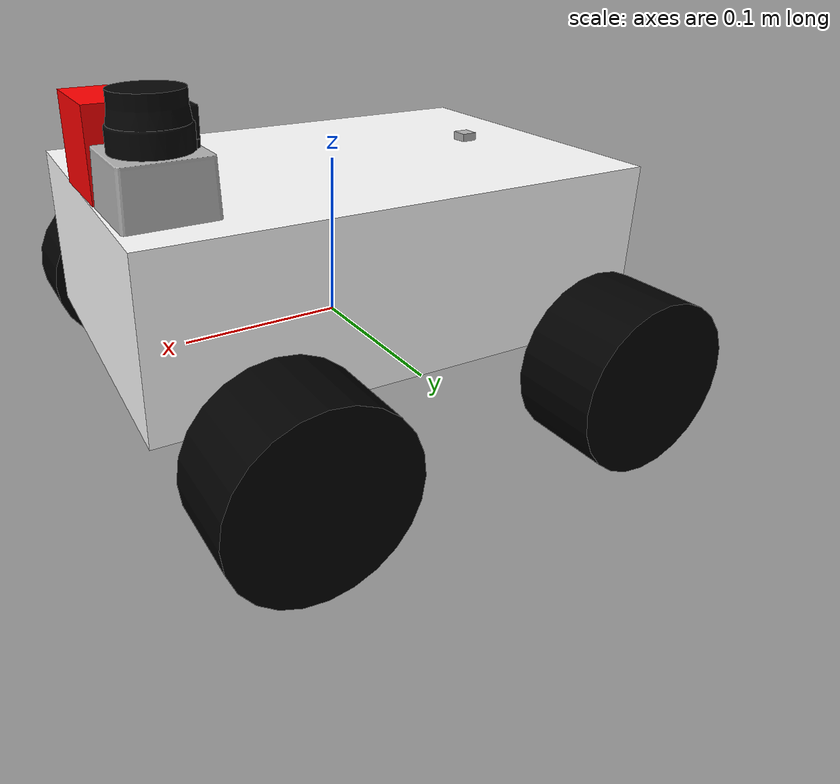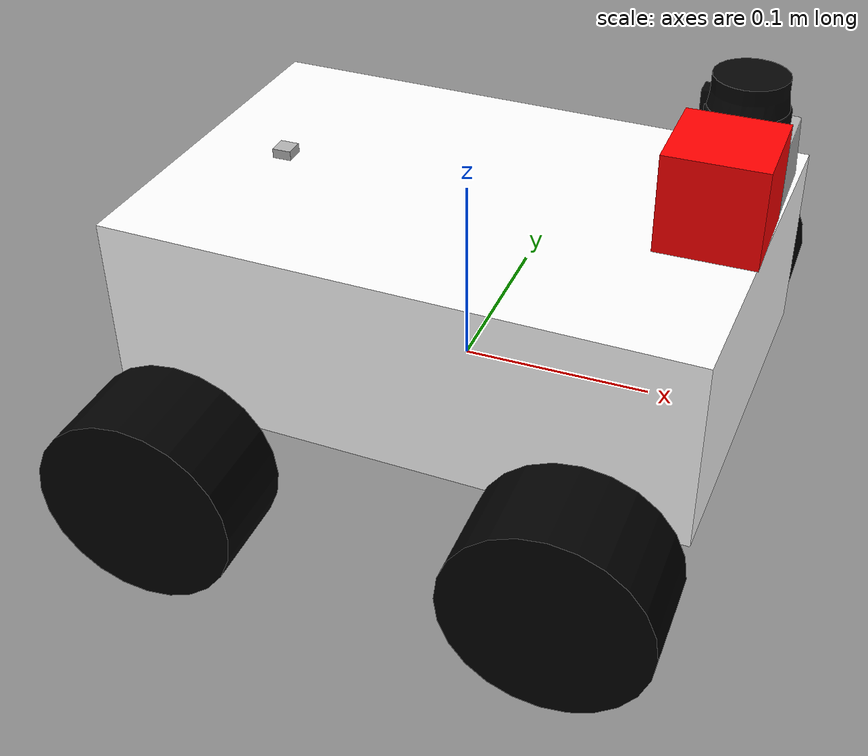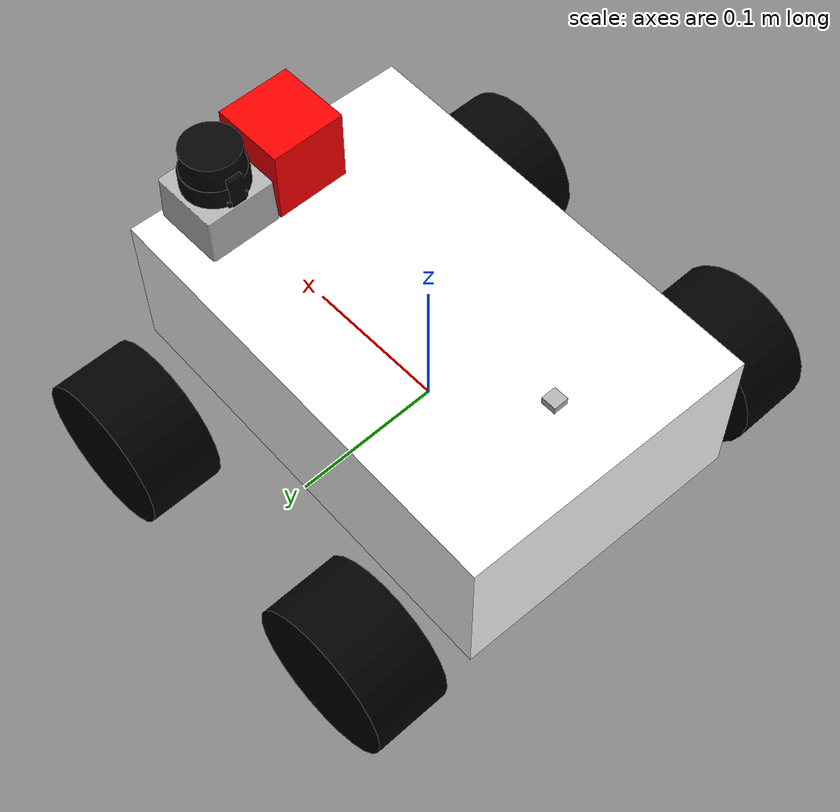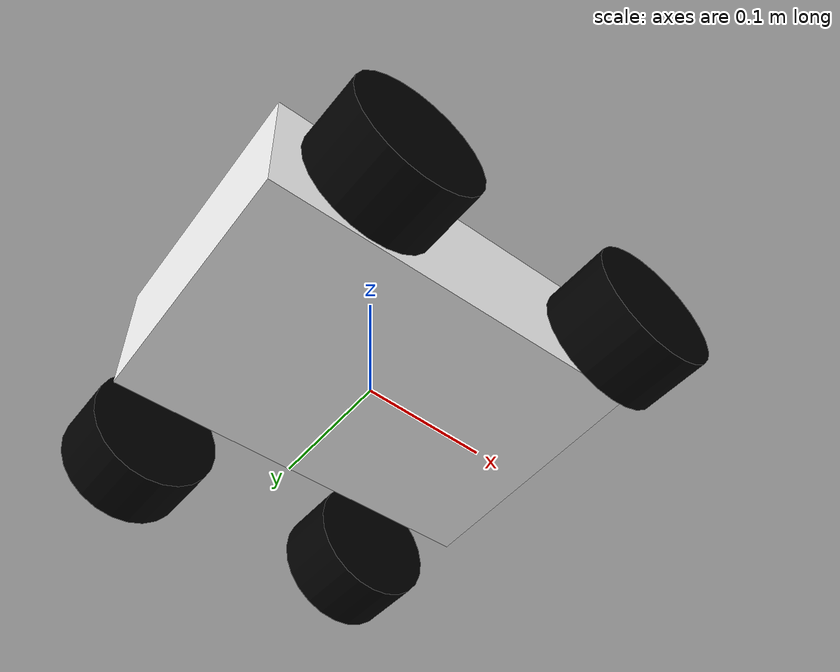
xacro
<?xml version="1.0"?>

<robot xmlns:xacro="http://www.ros.org/wiki/xacro"
 	xmlns:sensor="http://playerstage.sourceforge.net/gazebo/xmlschema/#sensor"
    	xmlns:controller="http://playerstage.sourceforge.net/gazebo/xmlschema/#controller"
    	xmlns:interface="http://playerstage.sourceforge.net/gazebo/xmlschema/#interface"
	name="smartcar">

	<xacro:property name="length_wheel" value="0.05" />
	<xacro:property name="radius_wheel" value="0.05" />
	<xacro:property name="camera_link" value="0.05" />
	<xacro:include filename="$(find chapter4)/robot_description/urdf/robot.gazebo" />
	<xacro:macro name="default_inertial" params="mass">
               <inertial>
                       <mass value="${mass}" />
                       <inertia ixx="1.0" ixy="0.0" ixz="0.0"
                                iyy="1.0" iyz="0.0"
                                izz="1.0" />
               </inertial>
	</xacro:macro>

	<link name="base_link">
   		<visual>
			<geometry>
      				<box size="0.2 .3 .1"/>
     			</geometry>
			<origin rpy="0 0 1.54" xyz="0 0 0.05"/>
			<material name="white">
				<color rgba="1 1 1 1"/>
			</material>
   		</visual>
		<collision>
			<geometry>
       				<box size="0.2 .3 0.1"/>
			</geometry>
		</collision>
		<xacro:default_inertial mass="10"/>
 	</link>
		<gazebo reference="base_link">
			<turnGravityOff>false</turnGravityOff>
		</gazebo>

<link name="wheel_1">
   		<visual>
     			<geometry>
       				<cylinder length="${length_wheel}" radius="${radius_wheel}"/>
     			</geometry>
			<origin rpy="0 0 0" xyz="0 0 0"/>
   			<material name="black">
				<color rgba="0 0 0 1"/>
			</material>
		</visual>
		<collision>
			<geometry>
       				<cylinder length="${length_wheel}" radius="${radius_wheel}"/>
			</geometry>
		</collision>
		<xacro:default_inertial mass="1"/>
 	</link>

 	<link name="wheel_2">
   		<visual>
     			<geometry>
       				<cylinder length="${length_wheel}" radius="${radius_wheel}"/>
     			</geometry>
			<origin rpy="0 0 0" xyz="0 0 0"/>
   			<material name="black"/>
   		</visual>
		<collision>
			<geometry>
       				<cylinder length="${length_wheel}" radius="${radius_wheel}"/>
			</geometry>
		</collision>
		<xacro:default_inertial mass="1"/>

 	</link>

 	<link name="wheel_3">
   		<visual>
     			<geometry>
       				<cylinder length="${length_wheel}" radius="${radius_wheel}"/>
     			</geometry>

			<origin rpy="0 0 0" xyz="0 0 0"/>
   			<material name="black"/>
   		</visual>
		<collision>
			<geometry>
       				<cylinder length="${length_wheel}" radius="${radius_wheel}"/>
			</geometry>
		</collision>
		<xacro:default_inertial mass="1"/>
 	</link>

 	<link name="wheel_4">
   		<visual>
     			<geometry>
       				<cylinder length="${length_wheel}" radius="${radius_wheel}"/>
     			</geometry>
			<origin rpy="0 0 0" xyz="0 0 0" />
   			<material name="black"/>
   		</visual>
		<collision>
			<geometry>
       				<cylinder length="${length_wheel}" radius="${radius_wheel}"/>
			</geometry>
		</collision>
		<xacro:default_inertial mass="1"/>

 	</link>

 <joint name="base_to_wheel1" type="continuous">
   <parent link="base_link"/>
   <child link="wheel_1"/>
   <origin rpy="-1.5707 0 0" xyz="0.1 0.15 0"/>
   <axis xyz="0 0 1" />
 </joint>

 <joint name="base_to_wheel2" type="continuous">
   <axis xyz="0 0 1" />
   <anchor xyz="0 0 0" />
   <limit effort="100" velocity="100" />
   <parent link="base_link"/>
   <child link="wheel_2"/>
   <origin rpy="-1.5707 0 0" xyz="-0.1 0.15 0"/>
</joint>

 <joint name="base_to_wheel3" type="continuous">
   <parent link="base_link"/>
   <axis xyz="0 0 1" />
   <child link="wheel_3"/>
   <origin rpy="-1.5707 0 0" xyz="0.1 -0.15 0"/>
 </joint>

 <joint name="base_to_wheel4" type="continuous">
   <parent link="base_link"/>
   <axis xyz="0 0 1" />
   <child link="wheel_4"/>
   <origin rpy="-1.5707 0 0" xyz="-0.1 -0.15 0"/>
 </joint>
 <!-- Camera joint -->
  <joint name="camera_joint" type="fixed">
    <axis xyz="0 1 0" />
    <origin xyz="0.125 0 0.125" rpy="0 0 0"/>
    <parent link="base_link"/>
    <child link="camera_link"/>
  </joint>

  <!-- Camera -->
  <link name="camera_link">
    <collision>
      <origin xyz="0 0 0" rpy="0 0 0"/>
      <geometry>
	<box size="0.05 0.05 0.05"/>
      </geometry>
    </collision>

    <visual>
      <origin xyz="0 0 0" rpy="0 0 0"/>
      <geometry>
	<box size="0.05 0.05 0.05"/>
      </geometry>
      <material name="red">
	<color rgba="1 0 0 1"/>
      </material>
    </visual>

    <inertial>
      <mass value="1e-5" />
      <origin xyz="0 0 0" rpy="0 0 0"/>
      <inertia ixx="1e-6" ixy="0" ixz="0" iyy="1e-6" iyz="0" izz="1e-6" />
    </inertial>
</link>

<!-- Hokuyo joint -->
  <joint name="hokuyo_joint" type="fixed">
    <origin xyz="0.125 0.05 0.125" rpy="0 0 0"/>
    <parent link="base_link"/>
    <axis xyz="0 1 0" />
    <child link="laser"/>
  </joint>
<!-- Hokuyo Laser -->
  <link name="laser">
    <collision>
      <origin xyz="0 0 0" rpy="0 0 0"/>
      <geometry>
	<box size="0.1 0.1 0.1"/>
      </geometry>
    </collision>
    <visual>
      <origin xyz="0 0 0" rpy="0 0 0"/>
      <geometry>
        <mesh filename="package://chapter4/robot_description/meshes/hokuyo.dae"/>
      </geometry>
    </visual>

    <inertial>
      <mass value="1e-5" />
      <origin xyz="0 0 0" rpy="0 0 0"/>
      <inertia ixx="1e-6" ixy="0" ixz="0" iyy="1e-6" iyz="0" izz="1e-6" />
    </inertial>
  </link>

<!-- imu joint -->
  <joint name="imu_joint" type="fixed">
    <origin xyz="-0.10 0.00 0.10" rpy="0 0 0"/>
    <parent link="base_link"/>
    <axis xyz="0 1 0" />
    <child link="imu_link"/>
  </joint>
<!-- imu -->
  <link name="imu_link">
    <collision>
      <origin xyz="0 0 0" rpy="0 0 0"/>
      <geometry>
				<box size="0.01 0.01 0.01"/>
      </geometry>
    </collision>
    <visual>
		  <geometry>
			<box size="0.01 0.01 0.01"/>
      </geometry>
      <origin xyz="0 0 0" rpy="0 0 0"/>
    </visual>

    <inertial>
      <mass value="1e-5" />
      <origin xyz="0 0 0" rpy="0 0 0"/>
      <inertia ixx="1e-6" ixy="0" ixz="0" iyy="1e-6" iyz="0" izz="1e-6" />
    </inertial>
  </link>

</robot>
